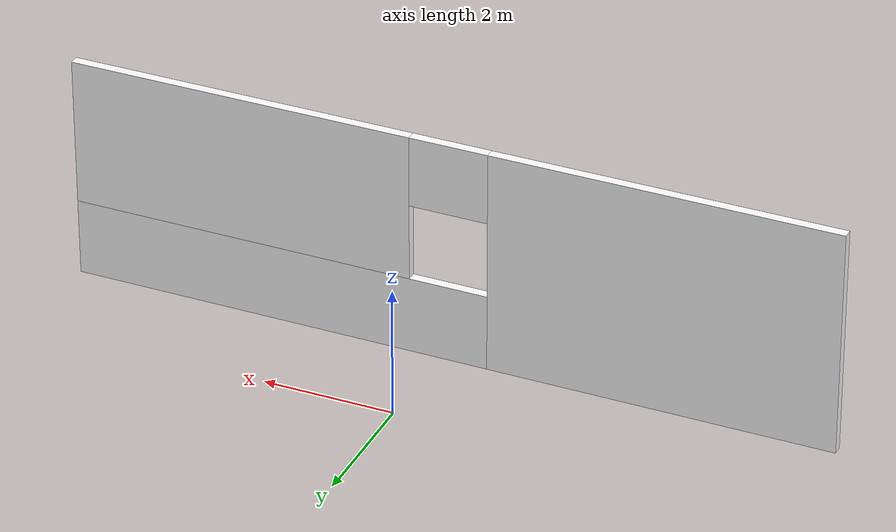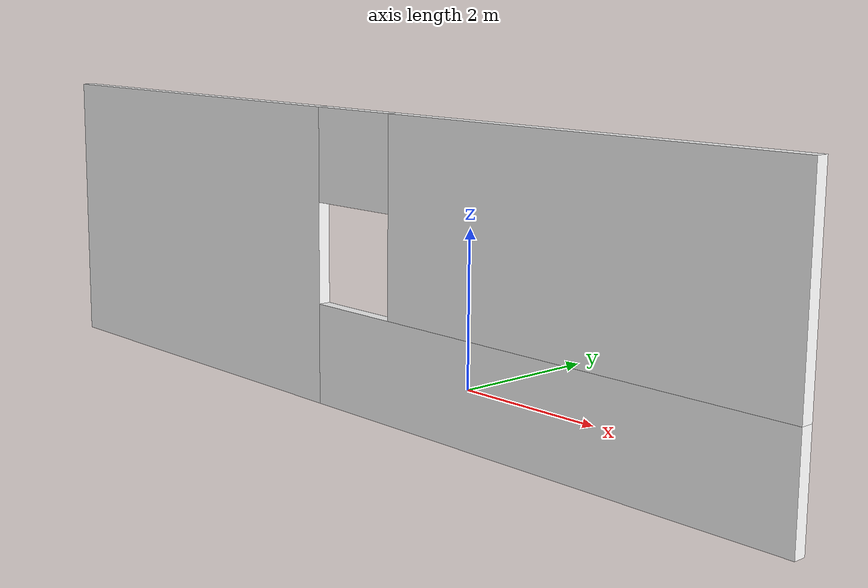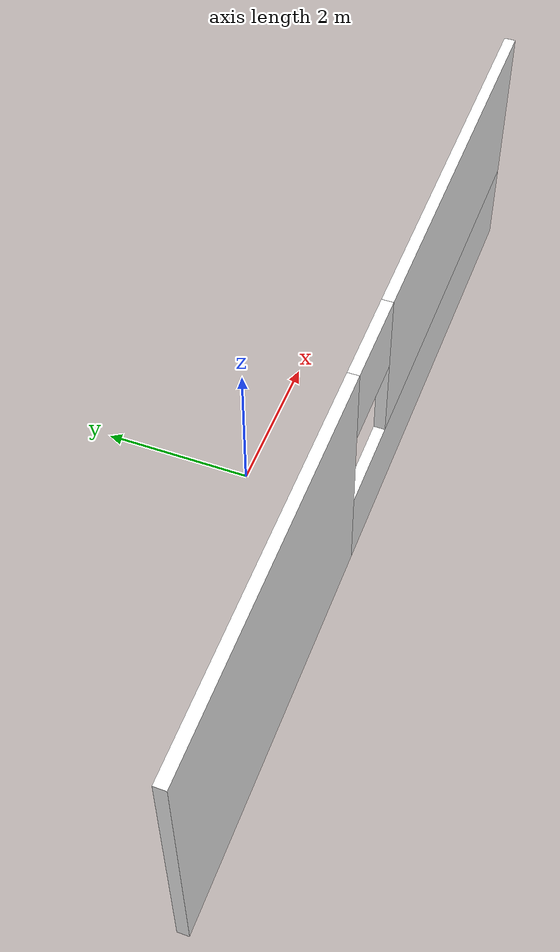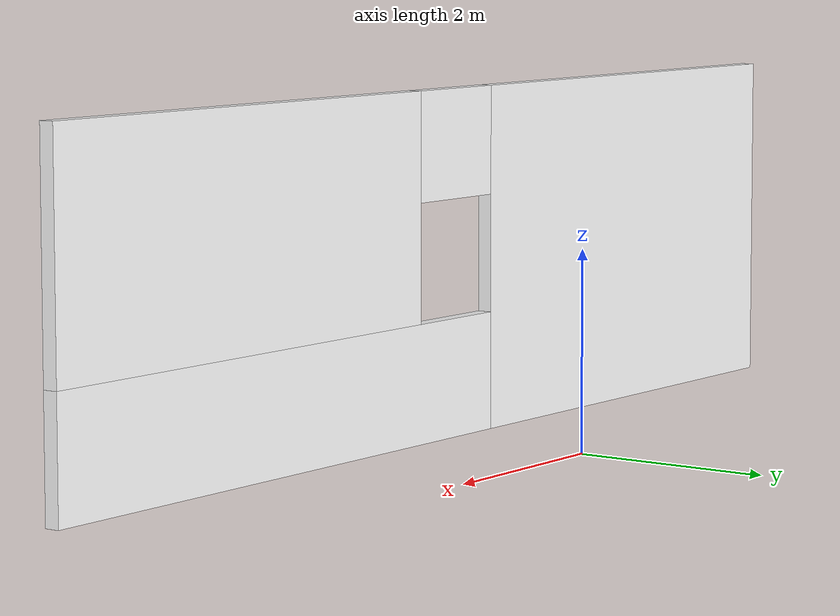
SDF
<?xml version="1.0"?>
<sdf version="1.5">
  <model name="window2">
    <pose>-0.12 -1.66 0 0 -0 0</pose>
    <link name="Wall_0">
      <pose>-0 0 0 0 -0 0</pose>
      <visual name="Wall_0_Visual_0">
        <pose>-3.2425 0 1.75 0 -0 0</pose>
        <geometry>
          <box>
            <size>5.265 0.15 3.5</size>
          </box>
        </geometry>
        <material>
          <script>
            <uri>model://window_door/materials/scripts</uri>
            <uri>model://window_door/materials/textures</uri>
            <name>Wall/NiceWall</name>
          </script>
          <ambient>1 1 1 1</ambient>
        </material>
      </visual>
      <collision name="Wall_0_Collision_0">
        <geometry>
          <box>
            <size>5.265 0.15 3.5</size>
          </box>
        </geometry>
        <pose>-3.2425 0 1.75 0 -0 0</pose>
      </collision>
      <visual name="Wall_0_Visual_1">
        <pose>2.6325 0 0.6 0 -0 0</pose>
        <geometry>
          <box>
            <size>6.485 0.15 1.2</size>
          </box>
        </geometry>
        <material>
          <script>
            <uri>model://window_door/materials/scripts</uri>
            <uri>model://window_door/materials/textures</uri>
            <name>Wall/NiceWall</name>
          </script>
          <ambient>1 1 1 1</ambient>
        </material>
      </visual>
      <collision name="Wall_0_Collision_1">
        <geometry>
          <box>
            <size>6.485 0.15 1.2</size>
          </box>
        </geometry>
        <pose>2.6325 0 0.6 0 -0 0</pose>
      </collision>
      <visual name="Wall_0_Visual_2">
        <pose>3.2325 0 2.35 0 -0 0</pose>
        <geometry>
          <box>
            <size>5.285 0.15 2.3</size>
          </box>
        </geometry>
        <material>
          <script>
            <uri>model://window_door/materials/scripts</uri>
            <uri>model://window_door/materials/textures</uri>
            <name>Wall/NiceWall</name>
          </script>
          <ambient>1 1 1 1</ambient>
        </material>
      </visual>
      <collision name="Wall_0_Collision_2">
        <geometry>
          <box>
            <size>5.285 0.15 2.3</size>
          </box>
        </geometry>
        <pose>3.2325 0 2.35 0 -0 0</pose>
      </collision>
      <visual name="Wall_0_Visual_3">
        <pose>-0.01 0 2.95 0 -0 0</pose>
        <geometry>
          <box>
            <size>1.2 0.15 1.1</size>
          </box>
        </geometry>
        <material>
          <script>
            <uri>model://window_door/materials/scripts</uri>
            <uri>model://window_door/materials/textures</uri>
            <name>Wall/NiceWall</name>
          </script>
          <ambient>1 1 1 1</ambient>
        </material>
      </visual>
      <collision name="Wall_0_Collision_3">
        <geometry>
          <box>
            <size>1.2 0.15 1.1</size>
          </box>
        </geometry>
        <pose>-0.01 0 2.95 0 -0 0</pose>
      </collision>
    </link>
    <static>1</static>
  </model>
</sdf>
